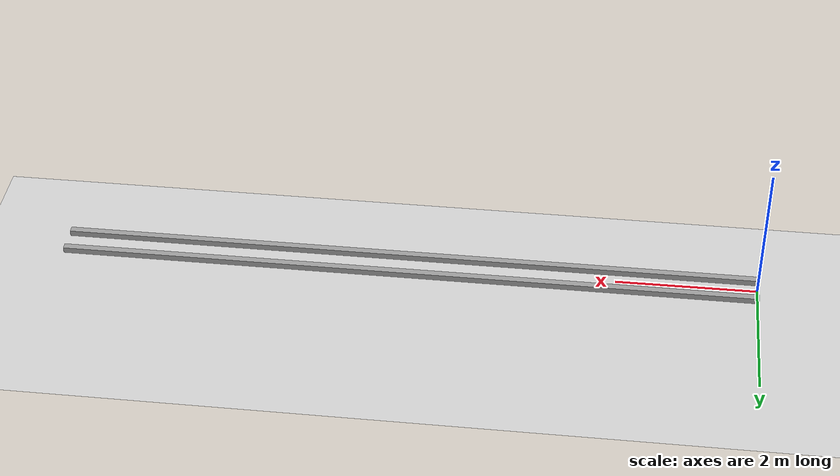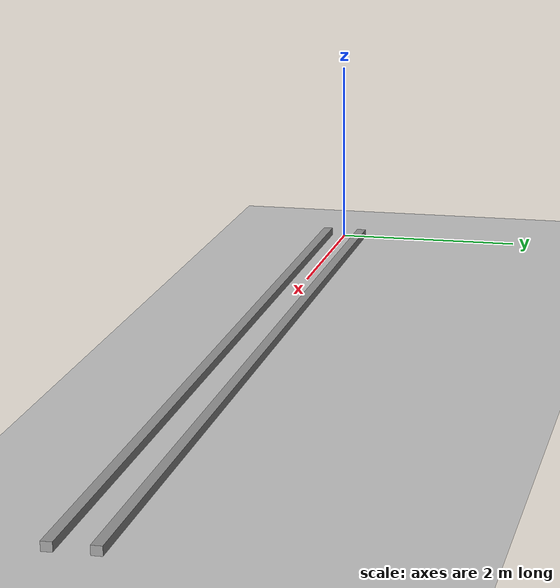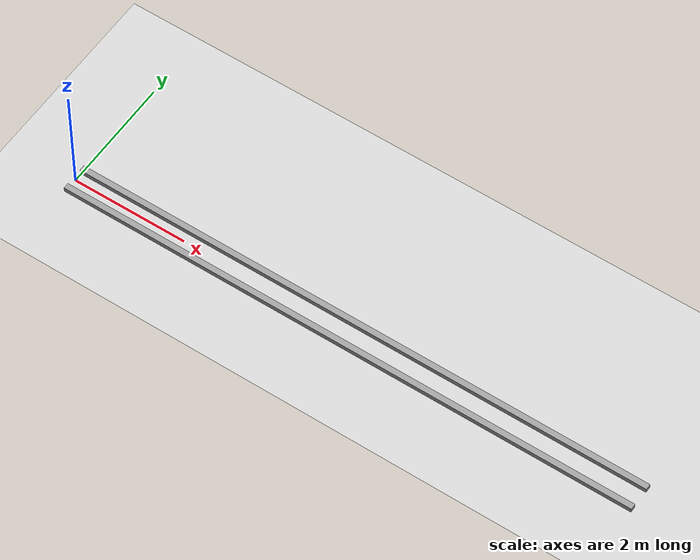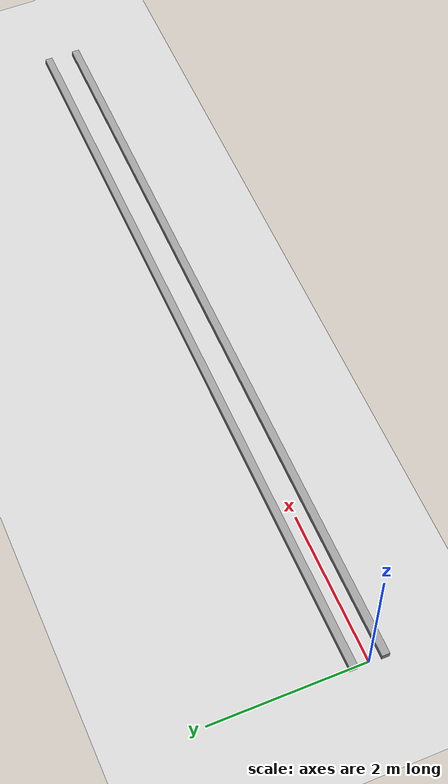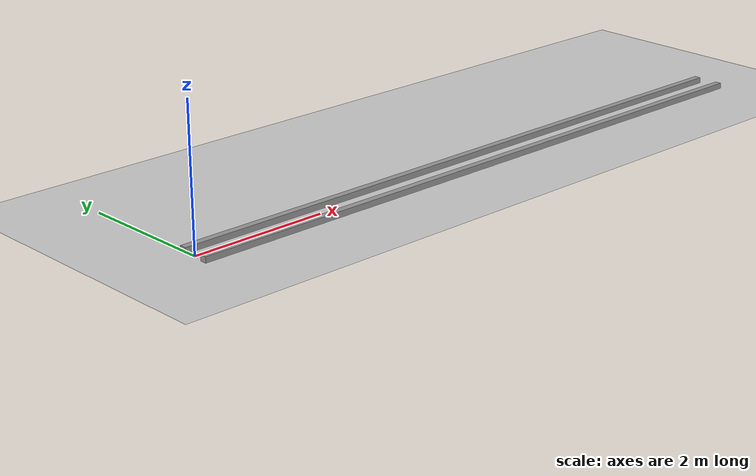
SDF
<sdf version='1.7'>
  <world name='default'>
    <!-- Adjusted Lighting -->
    <light name='sun' type='directional'>
      <cast_shadows>1</cast_shadows>
      <pose>0 0 10 0 -0 0</pose>
      <diffuse>1 1 1 1</diffuse>
      <specular>0.5 0.5 0.5 1</specular>
      <attenuation>
        <range>1000</range>
        <constant>0.9</constant>
        <linear>0.01</linear>
        <quadratic>0.001</quadratic>
      </attenuation>
      <direction>-0.5 0.1 -0.9</direction>
    </light>

    <!-- Ground Plane with adjusted friction -->
    <model name='ground_plane'>
      <static>1</static>
      <link name='link'>
        <collision name='collision'>
          <geometry>
            <plane>
              <normal>0 0 1</normal>
              <size>100 100</size>
            </plane>
          </geometry>
          <surface>
            <friction>
              <ode>
                <mu>0.8</mu>
                <mu2>0.4</mu2>
              </ode>
            </friction>
          </surface>
        </collision>
        <visual name='visual'>
          <geometry>
            <plane>
              <normal>0 0 1</normal>
              <size>100 100</size>
            </plane>
          </geometry>
          <material>
            <script>
              <uri>file://media/materials/scripts/gazebo.material</uri>
              <name>Gazebo/Grey</name>
            </script>
          </material>
        </visual>
      </link>
    </model>

    <!-- One Lane Model -->
    <model name='one_lane'>
      <pose>4.975 0 0 0 -0 0</pose>
      <!-- Wall 0 -->
      <link name='Wall_0'>
        <collision name='Wall_0_Collision'>
          <geometry>
            <box>
              <size>10 0.1 0.15</size>
            </box>
          </geometry>
          <pose>0 0 0.075 0 -0 0</pose>
        </collision>
        <visual name='Wall_0_Visual'>
          <geometry>
            <box>
              <size>10 0.1 0.15</size>
            </box>
          </geometry>
          <material>
            <script>
              <uri>file://media/materials/scripts/gazebo.material</uri>
              <name>Gazebo/Grey</name>
            </script>
          </material>
        </visual>
        <pose>0 -0.2 0 0 -0 0</pose>
      </link>

      <!-- Wall 2 -->
      <link name='Wall_2'>
        <collision name='Wall_2_Collision'>
          <geometry>
            <box>
              <size>10 0.1 0.15</size>
            </box>
          </geometry>
          <pose>0 0 0.075 0 -0 0</pose>
        </collision>
        <visual name='Wall_2_Visual'>
          <geometry>
            <box>
              <size>10 0.1 0.15</size>
            </box>
          </geometry>
          <material>
            <script>
              <uri>file://media/materials/scripts/gazebo.material</uri>
              <name>Gazebo/Grey</name>
            </script>
          </material>
        </visual>
        <pose>0 0.2 0 0 -0 0</pose>
      </link>
      <static>1</static>
    </model>

    <!-- Physics -->
    <physics type='ode'>
      <max_step_size>0.001</max_step_size>
      <real_time_factor>1</real_time_factor>
      <real_time_update_rate>1000</real_time_update_rate>
    </physics>

    <!-- Scene -->
    <scene>
      <ambient>0.6 0.6 0.6 1</ambient>
      <background>0.7 0.7 0.7 1</background>
      <shadows>1</shadows>
    </scene>

    <!-- GUI -->
    <gui fullscreen='0'>
      <camera name='user_camera'>
        <pose>-3 0 1.5 0 0 0</pose>
        <view_controller>orbit</view_controller>
      </camera>
    </gui>
  </world>
</sdf>
